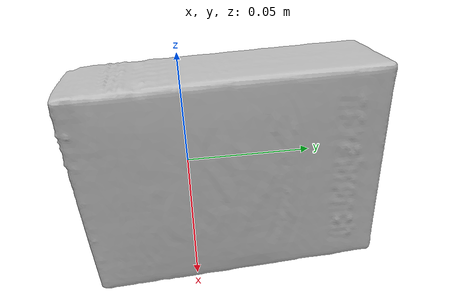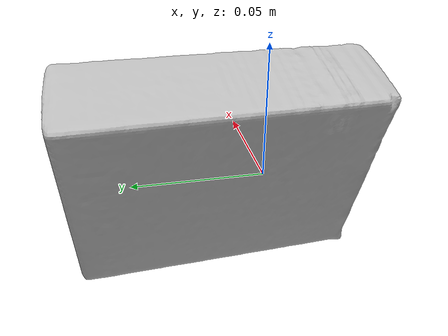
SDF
<?xml version='1.0'?>
<sdf version="1.4">
  <model name="CoughDropsLemon">
    <static>false</static>
    <link name="link">
      <inertial>
        <pose>0.006326467211293473 0.0162049987845223 0.0018067748134910349 1.5714188236463285 0.3094740573918817 -3.0953403132411954</pose>
        <mass>0.03336195431115858</mass>
        <inertia>
          <ixx>5.340932290727339e-05</ixx>
          <ixy>7.12541329175974e-24</ixy>
          <ixz>1.8318205765570755e-21</ixz>
          <iyy>3.9111171042107966e-05</iyy>
          <iyz>1.994188955963291e-23</iyz>
          <izz>2.1543180484614264e-05</izz>
        </inertia>
      </inertial>
      <collision name="collision">
        <geometry>
          <mesh>
            <!-- Use a downsampled mesh for collisions -->
            <uri>model:///CoughDropsLemon/CoughDropsLemon_250_collision.obj</uri>
	        </mesh>
        </geometry>
        <surface>
      </surface>
      </collision>
      <visual name="visual">
        <geometry>
          <mesh>
            <uri>model:///CoughDropsLemon/CoughDropsLemon_25k_tex.obj</uri>
	        </mesh>
        </geometry>
        <material>
          <script>
            <uri>model:///CoughDropsLemon/CoughDropsLemon.material</uri>
            <name>CoughDropsLemon</name>
          </script>
        </material>
      </visual>
    </link>
  </model>
</sdf>
